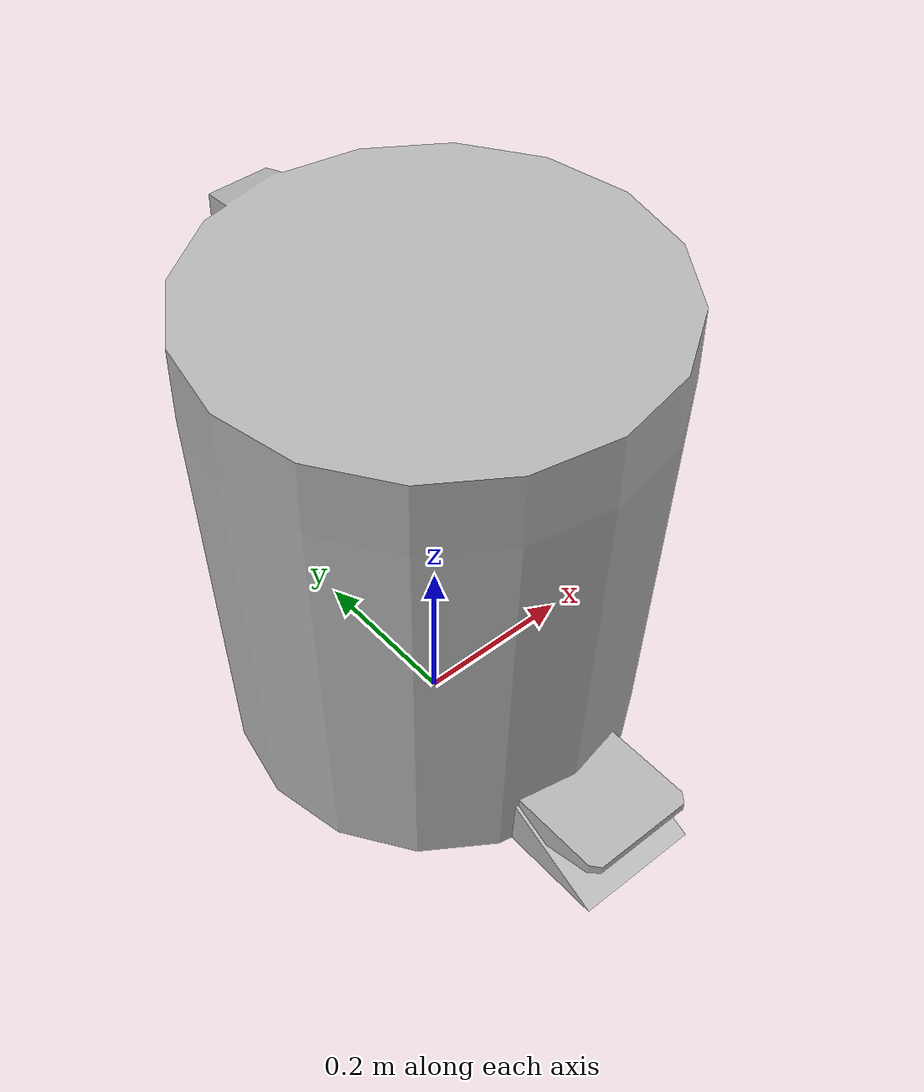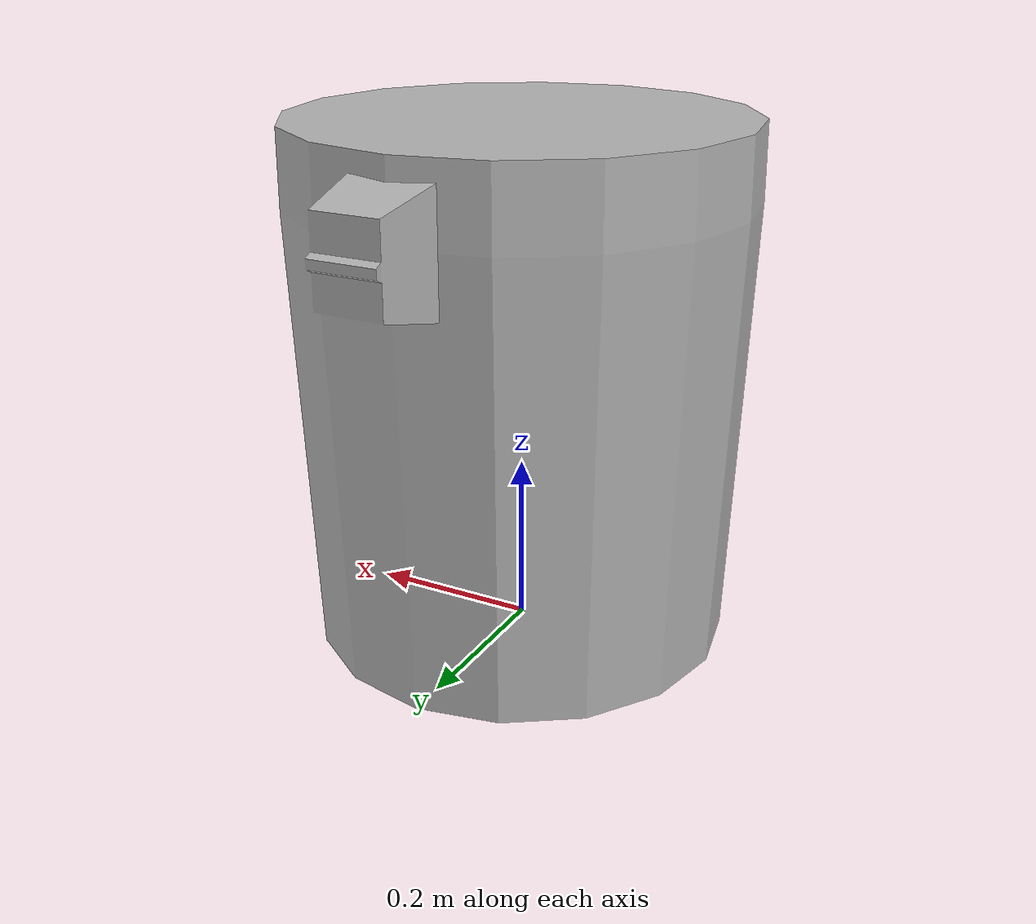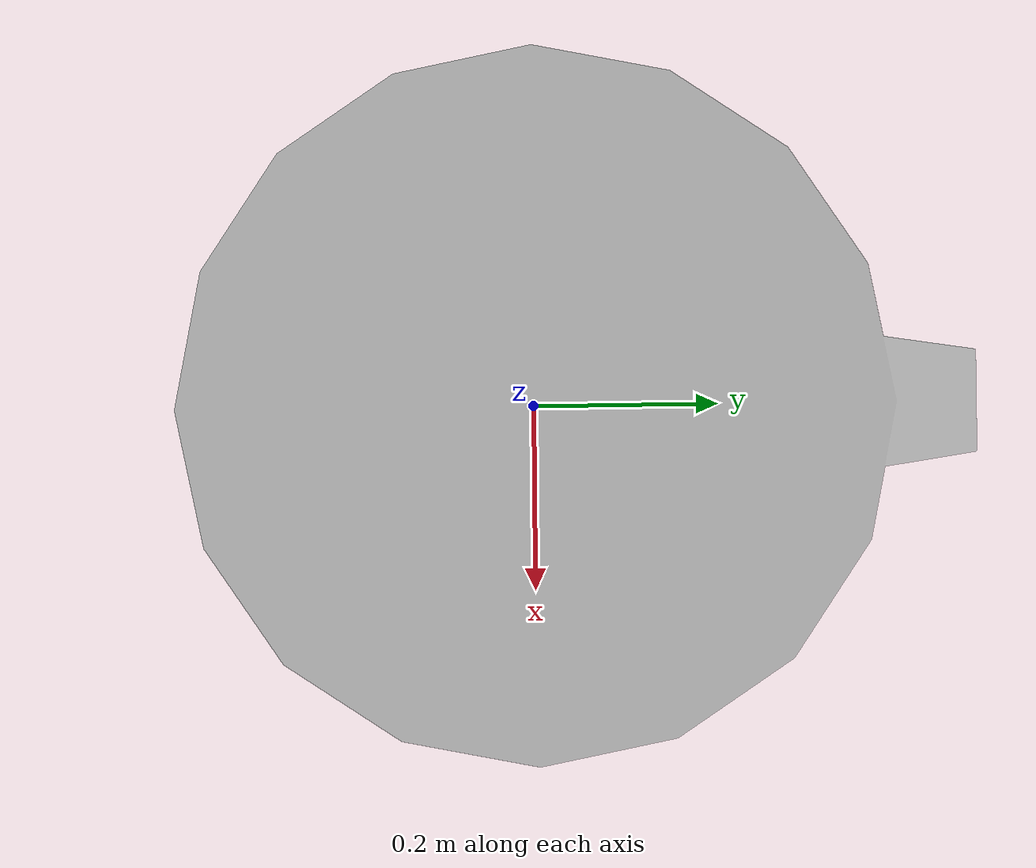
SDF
<?xml version="1.0" ?>
<sdf version="1.5">
  <model name="wastebasket">
    <static>true</static>
    <link name="link">
      <collision name="collision">
        <geometry>
          <mesh>
            <uri>model://wastebasket/meshes/wastebasket.dae</uri>
            <scale>1.4 1.4 1.4</scale>
          </mesh>
        </geometry>
      </collision>
      <visual name="visual">
        <geometry>
          <mesh>
            <uri>model://wastebasket/meshes/wastebasket.dae</uri>
            <scale>1.4 1.4 1.4</scale>
          </mesh>
        </geometry>
      </visual>
    </link>
  </model>
</sdf>
